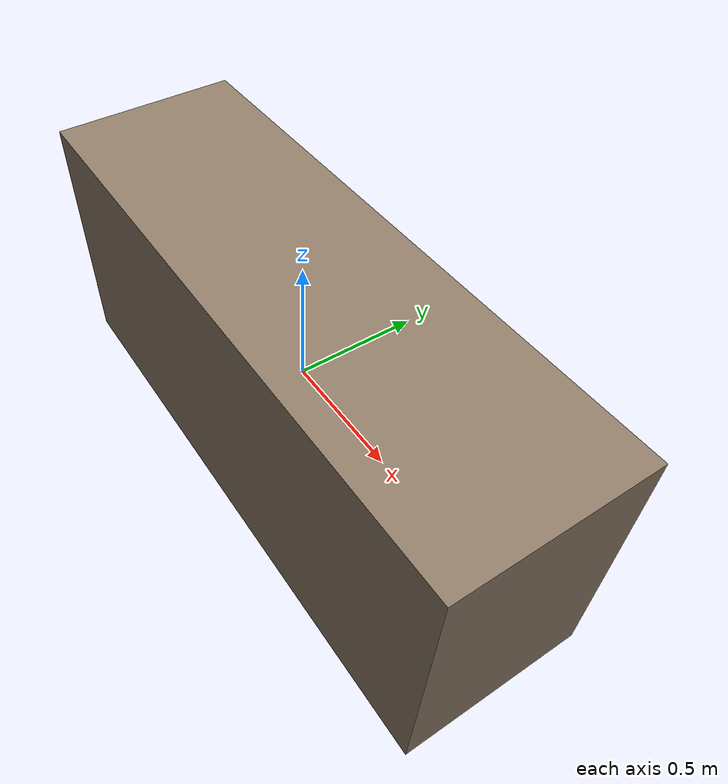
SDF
<?xml version="1.0"?>
<sdf version="1.6">
  <model name="reception_desk">
    <static>true</static>
    <link name="link">
      <collision name="col">
        <geometry>
          <box>
            <size>2.4 0.75 1.05</size>
          </box>
        </geometry>
      </collision>
      <visual name="vis">
        <geometry>
          <box>
            <size>2.4 0.75 1.05</size>
          </box>
        </geometry>
        <material>
          <ambient>0.55 0.48 0.4 1</ambient>
          <diffuse>0.55 0.48 0.4 1</diffuse>
        </material>
      </visual>
    </link>
  </model>
</sdf>
